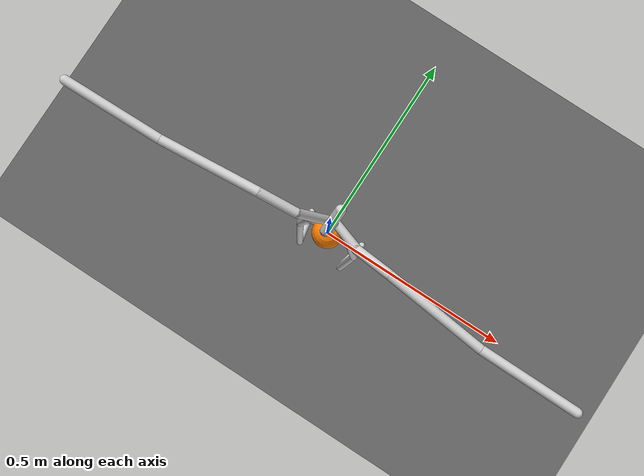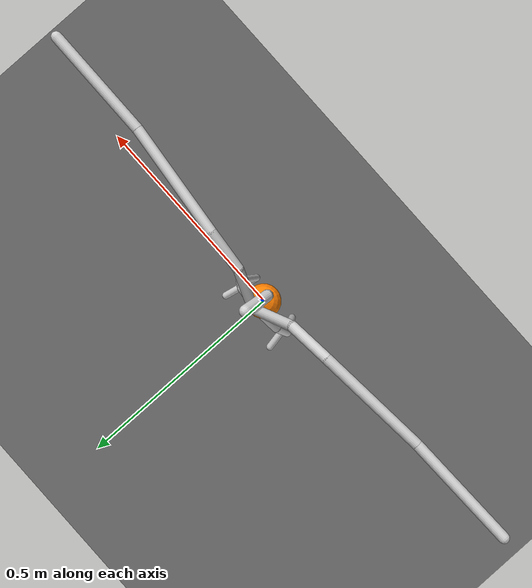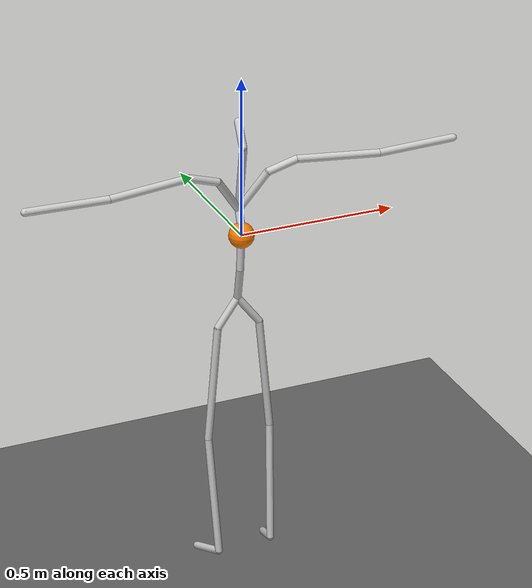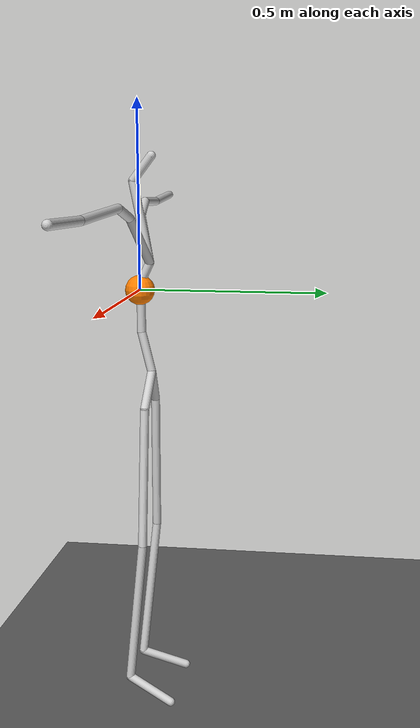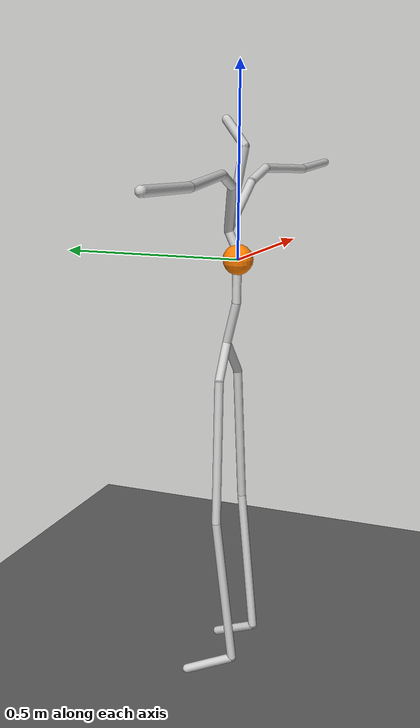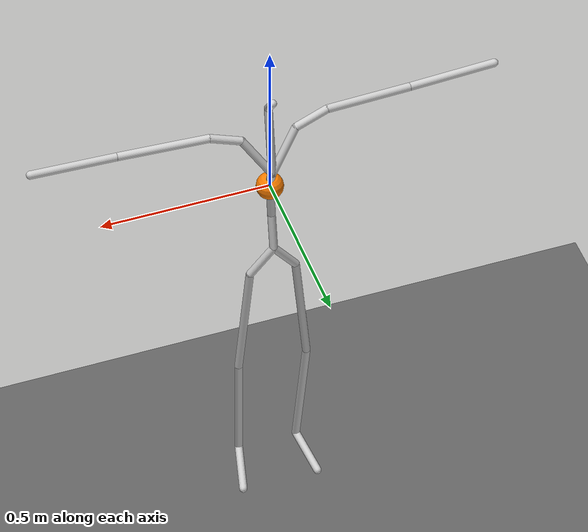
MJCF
<mujoco model="stick_figure">

    <size njmax="1000" nconmax="500"/>

    <compiler angle="degree" inertiafromgeom="true" coordinate="global"/>
    <!--
        coordinate="global": all positions in world space.
        This is important — mocap body positions are absolute world coords.
    -->

    <visual>
        <headlight ambient=".4 .4 .4" diffuse=".8 .8 .8" specular="0.1 0.1 0.1"/>
        <map znear=".01"/>
        <quality shadowsize="2048"/>
    </visual>

    <option timestep="0.0333" gravity="0 0 -9.81"/>
    <!--
        Z-up coordinate system.
        Gravity along -Z.
        Gravity has no effect on mocap bodies but matters for
        any physics objects we add later (table, chair).
    -->

    <statistic extent="3" center="0 0 1"/>

    <asset>
        <texture builtin="checker" height="100" name="texplane"
                 rgb1="0.15 0.15 0.15" rgb2="0.6 0.6 0.6"
                 type="2d" width="100"/>
        <material name="MatPlane" reflectance="0.3" shininess="0.5"
                  specular="0.5" texrepeat="4 4" texture="texplane"/>
        <texture type="skybox" builtin="gradient"
                 rgb1=".4 .5 .6" rgb2="0 0 0"
                 width="100" height="100"/>
    </asset>

    <worldbody>

        <!-- ===== LIGHTING ===== -->
        <light name="main_light"
               pos="0 -2 4" dir="0 1 -2"
               diffuse="0.8 0.8 0.8" specular="0.2 0.2 0.2"
               directional="true" castshadow="true"/>
        <light name="fill_light"
               pos="0 2 3" dir="0 -1 -1"
               diffuse="0.3 0.3 0.3" specular="0.0 0.0 0.0"
               directional="true" castshadow="false"/>

        <!-- ===== FLOOR ===== -->
        <geom name="floor" type="plane"
              pos="0 0 -1.20" size="5 5 0.1"
              material="MatPlane"
              conaffinity="1" condim="3" contype="1"/>

        <!-- ===== CAMERAS ===== -->
        <!--
            side_cam:  view from the side (+X), good for walking
            front_cam: view from the front (+Y)
            top_cam:   bird's eye view from above (+Z)
        -->
        <camera name="side_cam"
                pos="4 0 1"
                xyaxes="0 1 0 0 0 1"/>
        <camera name="front_cam"
                pos="0 -4 1"
                xyaxes="1 0 0 0 0 1"/>
        <camera name="top_cam"
                pos="0 0 5"
                xyaxes="1 0 0 0 1 0"/>

        <!-- ===== JOINT SPHERES (22 mocap bodies) ===== -->

        <!-- Joint 0: pelvis -->
        <body name="joint_pelvis" mocap="true" pos="-0.0018 0.0282 -0.2233">
            <geom type="sphere" size="0.04"
                  rgba="1.0 0.5 0.0 1.0"
                  contype="0" conaffinity="0"/>
        </body>

        <!-- Joint 1: left_hip -->
        <body name="joint_left_hip" mocap="true" pos="0.0677 0.0214 -0.3147">
            <geom type="sphere" size="0.025"
                  rgba="0.2 0.6 1.0 1.0"
                  contype="0" conaffinity="0"/>
        </body>

        <!-- Joint 2: right_hip -->
        <body name="joint_right_hip" mocap="true" pos="-0.0695 0.0239 -0.3139">
            <geom type="sphere" size="0.025"
                  rgba="0.2 0.6 1.0 1.0"
                  contype="0" conaffinity="0"/>
        </body>

        <!-- Joint 3: spine1 -->
        <body name="joint_spine1" mocap="true" pos="-0.0043 0.0015 -0.1144">
            <geom type="sphere" size="0.025"
                  rgba="0.2 0.6 1.0 1.0"
                  contype="0" conaffinity="0"/>
        </body>

        <!-- Joint 4: left_knee -->
        <body name="joint_left_knee" mocap="true" pos="0.1020 0.0169 -0.6899">
            <geom type="sphere" size="0.025"
                  rgba="0.2 0.6 1.0 1.0"
                  contype="0" conaffinity="0"/>
        </body>

        <!-- Joint 5: right_knee -->
        <body name="joint_right_knee" mocap="true" pos="-0.1078 0.0150 -0.6964">
            <geom type="sphere" size="0.025"
                  rgba="0.2 0.6 1.0 1.0"
                  contype="0" conaffinity="0"/>
        </body>

        <!-- Joint 6: spine2 -->
        <body name="joint_spine2" mocap="true" pos="0.0012 0.0026 0.0208">
            <geom type="sphere" size="0.025"
                  rgba="0.2 0.6 1.0 1.0"
                  contype="0" conaffinity="0"/>
        </body>

        <!-- Joint 7: left_ankle -->
        <body name="joint_left_ankle" mocap="true" pos="0.0884 -0.0268 -1.0879">
            <geom type="sphere" size="0.025"
                  rgba="0.2 0.6 1.0 1.0"
                  contype="0" conaffinity="0"/>
        </body>

        <!-- Joint 8: right_ankle -->
        <body name="joint_right_ankle" mocap="true" pos="-0.0920 -0.0273 -1.0948">
            <geom type="sphere" size="0.025"
                  rgba="0.2 0.6 1.0 1.0"
                  contype="0" conaffinity="0"/>
        </body>

        <!-- Joint 9: spine3 -->
        <body name="joint_spine3" mocap="true" pos="0.0026 0.0280 0.0737">
            <geom type="sphere" size="0.025"
                  rgba="0.2 0.6 1.0 1.0"
                  contype="0" conaffinity="0"/>
        </body>

        <!-- Joint 10: left_foot -->
        <body name="joint_left_foot" mocap="true" pos="0.1148 0.0925 -1.1437">
            <geom type="sphere" size="0.025"
                  rgba="0.2 0.6 1.0 1.0"
                  contype="0" conaffinity="0"/>
        </body>

        <!-- Joint 11: right_foot -->
        <body name="joint_right_foot" mocap="true" pos="-0.1174 0.0961 -1.1430">
            <geom type="sphere" size="0.025"
                  rgba="0.2 0.6 1.0 1.0"
                  contype="0" conaffinity="0"/>
        </body>

        <!-- Joint 12: neck -->
        <body name="joint_neck" mocap="true" pos="-0.0002 -0.0148 0.2876">
            <geom type="sphere" size="0.025"
                  rgba="0.2 0.6 1.0 1.0"
                  contype="0" conaffinity="0"/>
        </body>

        <!-- Joint 13: left_collar -->
        <body name="joint_left_collar" mocap="true" pos="0.0815 -0.0060 0.1955">
            <geom type="sphere" size="0.025"
                  rgba="0.2 0.6 1.0 1.0"
                  contype="0" conaffinity="0"/>
        </body>

        <!-- Joint 14: right_collar -->
        <body name="joint_right_collar" mocap="true" pos="-0.0791 -0.0106 0.1926">
            <geom type="sphere" size="0.025"
                  rgba="0.2 0.6 1.0 1.0"
                  contype="0" conaffinity="0"/>
        </body>

        <!-- Joint 15: head -->
        <body name="joint_head" mocap="true" pos="0.0050 0.0365 0.3526">
            <geom type="sphere" size="0.025"
                  rgba="0.2 0.6 1.0 1.0"
                  contype="0" conaffinity="0"/>
        </body>

        <!-- Joint 16: left_shoulder -->
        <body name="joint_left_shoulder" mocap="true" pos="0.1724 -0.0149 0.2260">
            <geom type="sphere" size="0.025"
                  rgba="0.2 0.6 1.0 1.0"
                  contype="0" conaffinity="0"/>
        </body>

        <!-- Joint 17: right_shoulder -->
        <body name="joint_right_shoulder" mocap="true" pos="-0.1752 -0.0197 0.2251">
            <geom type="sphere" size="0.025"
                  rgba="0.2 0.6 1.0 1.0"
                  contype="0" conaffinity="0"/>
        </body>

        <!-- Joint 18: left_elbow -->
        <body name="joint_left_elbow" mocap="true" pos="0.4320 -0.0424 0.2132">
            <geom type="sphere" size="0.025"
                  rgba="0.2 0.6 1.0 1.0"
                  contype="0" conaffinity="0"/>
        </body>

        <!-- Joint 19: right_elbow -->
        <body name="joint_right_elbow" mocap="true" pos="-0.4289 -0.0411 0.2118">
            <geom type="sphere" size="0.025"
                  rgba="0.2 0.6 1.0 1.0"
                  contype="0" conaffinity="0"/>
        </body>

        <!-- Joint 20: left_wrist -->
        <body name="joint_left_wrist" mocap="true" pos="0.6813 -0.0435 0.2222">
            <geom type="sphere" size="0.025"
                  rgba="0.2 0.6 1.0 1.0"
                  contype="0" conaffinity="0"/>
        </body>

        <!-- Joint 21: right_wrist -->
        <body name="joint_right_wrist" mocap="true" pos="-0.6842 -0.0467 0.2196">
            <geom type="sphere" size="0.025"
                  rgba="0.2 0.6 1.0 1.0"
                  contype="0" conaffinity="0"/>
        </body>

        <!-- ===== BONE CAPSULES (21 bodies) ===== -->

        <!-- Bone: pelvis -> left_hip -->
        <body name="bone_pelvis_left_hip" pos="0 0 0">
            <geom name="bone_0_1"
                  type="capsule" size="0.012"
                  fromto="-0.0018 0.0282 -0.2233  0.0677 0.0214 -0.3147"
                  rgba="0.8 0.8 0.8 0.9"
                  contype="0" conaffinity="0"/>
        </body>

        <!-- Bone: pelvis -> right_hip -->
        <body name="bone_pelvis_right_hip" pos="0 0 0">
            <geom name="bone_0_2"
                  type="capsule" size="0.012"
                  fromto="-0.0018 0.0282 -0.2233  -0.0695 0.0239 -0.3139"
                  rgba="0.8 0.8 0.8 0.9"
                  contype="0" conaffinity="0"/>
        </body>

        <!-- Bone: pelvis -> spine1 -->
        <body name="bone_pelvis_spine1" pos="0 0 0">
            <geom name="bone_0_3"
                  type="capsule" size="0.012"
                  fromto="-0.0018 0.0282 -0.2233  -0.0043 0.0015 -0.1144"
                  rgba="0.8 0.8 0.8 0.9"
                  contype="0" conaffinity="0"/>
        </body>

        <!-- Bone: left_hip -> left_knee -->
        <body name="bone_left_hip_left_knee" pos="0 0 0">
            <geom name="bone_1_4"
                  type="capsule" size="0.012"
                  fromto="0.0677 0.0214 -0.3147  0.1020 0.0169 -0.6899"
                  rgba="0.8 0.8 0.8 0.9"
                  contype="0" conaffinity="0"/>
        </body>

        <!-- Bone: right_hip -> right_knee -->
        <body name="bone_right_hip_right_knee" pos="0 0 0">
            <geom name="bone_2_5"
                  type="capsule" size="0.012"
                  fromto="-0.0695 0.0239 -0.3139  -0.1078 0.0150 -0.6964"
                  rgba="0.8 0.8 0.8 0.9"
                  contype="0" conaffinity="0"/>
        </body>

        <!-- Bone: spine1 -> spine2 -->
        <body name="bone_spine1_spine2" pos="0 0 0">
            <geom name="bone_3_6"
                  type="capsule" size="0.012"
                  fromto="-0.0043 0.0015 -0.1144  0.0012 0.0026 0.0208"
                  rgba="0.8 0.8 0.8 0.9"
                  contype="0" conaffinity="0"/>
        </body>

        <!-- Bone: left_knee -> left_ankle -->
        <body name="bone_left_knee_left_ankle" pos="0 0 0">
            <geom name="bone_4_7"
                  type="capsule" size="0.012"
                  fromto="0.1020 0.0169 -0.6899  0.0884 -0.0268 -1.0879"
                  rgba="0.8 0.8 0.8 0.9"
                  contype="0" conaffinity="0"/>
        </body>

        <!-- Bone: right_knee -> right_ankle -->
        <body name="bone_right_knee_right_ankle" pos="0 0 0">
            <geom name="bone_5_8"
                  type="capsule" size="0.012"
                  fromto="-0.1078 0.0150 -0.6964  -0.0920 -0.0273 -1.0948"
                  rgba="0.8 0.8 0.8 0.9"
                  contype="0" conaffinity="0"/>
        </body>

        <!-- Bone: spine2 -> spine3 -->
        <body name="bone_spine2_spine3" pos="0 0 0">
            <geom name="bone_6_9"
                  type="capsule" size="0.012"
                  fromto="0.0012 0.0026 0.0208  0.0026 0.0280 0.0737"
                  rgba="0.8 0.8 0.8 0.9"
                  contype="0" conaffinity="0"/>
        </body>

        <!-- Bone: left_ankle -> left_foot -->
        <body name="bone_left_ankle_left_foot" pos="0 0 0">
            <geom name="bone_7_10"
                  type="capsule" size="0.012"
                  fromto="0.0884 -0.0268 -1.0879  0.1148 0.0925 -1.1437"
                  rgba="0.8 0.8 0.8 0.9"
                  contype="0" conaffinity="0"/>
        </body>

        <!-- Bone: right_ankle -> right_foot -->
        <body name="bone_right_ankle_right_foot" pos="0 0 0">
            <geom name="bone_8_11"
                  type="capsule" size="0.012"
                  fromto="-0.0920 -0.0273 -1.0948  -0.1174 0.0961 -1.1430"
                  rgba="0.8 0.8 0.8 0.9"
                  contype="0" conaffinity="0"/>
        </body>

        <!-- Bone: spine3 -> neck -->
        <body name="bone_spine3_neck" pos="0 0 0">
            <geom name="bone_9_12"
                  type="capsule" size="0.012"
                  fromto="0.0026 0.0280 0.0737  -0.0002 -0.0148 0.2876"
                  rgba="0.8 0.8 0.8 0.9"
                  contype="0" conaffinity="0"/>
        </body>

        <!-- Bone: spine3 -> left_collar -->
        <body name="bone_spine3_left_collar" pos="0 0 0">
            <geom name="bone_9_13"
                  type="capsule" size="0.012"
                  fromto="0.0026 0.0280 0.0737  0.0815 -0.0060 0.1955"
                  rgba="0.8 0.8 0.8 0.9"
                  contype="0" conaffinity="0"/>
        </body>

        <!-- Bone: spine3 -> right_collar -->
        <body name="bone_spine3_right_collar" pos="0 0 0">
            <geom name="bone_9_14"
                  type="capsule" size="0.012"
                  fromto="0.0026 0.0280 0.0737  -0.0791 -0.0106 0.1926"
                  rgba="0.8 0.8 0.8 0.9"
                  contype="0" conaffinity="0"/>
        </body>

        <!-- Bone: neck -> head -->
        <body name="bone_neck_head" pos="0 0 0">
            <geom name="bone_12_15"
                  type="capsule" size="0.012"
                  fromto="-0.0002 -0.0148 0.2876  0.0050 0.0365 0.3526"
                  rgba="0.8 0.8 0.8 0.9"
                  contype="0" conaffinity="0"/>
        </body>

        <!-- Bone: left_collar -> left_shoulder -->
        <body name="bone_left_collar_left_shoulder" pos="0 0 0">
            <geom name="bone_13_16"
                  type="capsule" size="0.012"
                  fromto="0.0815 -0.0060 0.1955  0.1724 -0.0149 0.2260"
                  rgba="0.8 0.8 0.8 0.9"
                  contype="0" conaffinity="0"/>
        </body>

        <!-- Bone: right_collar -> right_shoulder -->
        <body name="bone_right_collar_right_shoulder" pos="0 0 0">
            <geom name="bone_14_17"
                  type="capsule" size="0.012"
                  fromto="-0.0791 -0.0106 0.1926  -0.1752 -0.0197 0.2251"
                  rgba="0.8 0.8 0.8 0.9"
                  contype="0" conaffinity="0"/>
        </body>

        <!-- Bone: left_shoulder -> left_elbow -->
        <body name="bone_left_shoulder_left_elbow" pos="0 0 0">
            <geom name="bone_16_18"
                  type="capsule" size="0.012"
                  fromto="0.1724 -0.0149 0.2260  0.4320 -0.0424 0.2132"
                  rgba="0.8 0.8 0.8 0.9"
                  contype="0" conaffinity="0"/>
        </body>

        <!-- Bone: right_shoulder -> right_elbow -->
        <body name="bone_right_shoulder_right_elbow" pos="0 0 0">
            <geom name="bone_17_19"
                  type="capsule" size="0.012"
                  fromto="-0.1752 -0.0197 0.2251  -0.4289 -0.0411 0.2118"
                  rgba="0.8 0.8 0.8 0.9"
                  contype="0" conaffinity="0"/>
        </body>

        <!-- Bone: left_elbow -> left_wrist -->
        <body name="bone_left_elbow_left_wrist" pos="0 0 0">
            <geom name="bone_18_20"
                  type="capsule" size="0.012"
                  fromto="0.4320 -0.0424 0.2132  0.6813 -0.0435 0.2222"
                  rgba="0.8 0.8 0.8 0.9"
                  contype="0" conaffinity="0"/>
        </body>

        <!-- Bone: right_elbow -> right_wrist -->
        <body name="bone_right_elbow_right_wrist" pos="0 0 0">
            <geom name="bone_19_21"
                  type="capsule" size="0.012"
                  fromto="-0.4289 -0.0411 0.2118  -0.6842 -0.0467 0.2196"
                  rgba="0.8 0.8 0.8 0.9"
                  contype="0" conaffinity="0"/>
        </body>

    </worldbody>

</mujoco>
